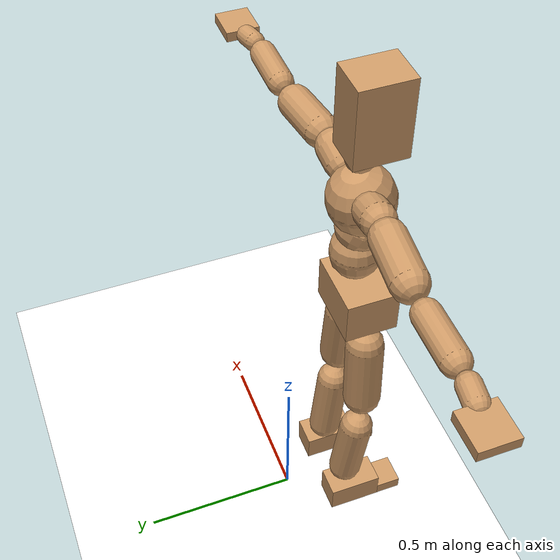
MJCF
<mujoco model="humanoid">
  <option integrator="implicitfast" />

  <visual>
    <global offwidth="1280" offheight="960" />
    <headlight active="1" ambient="0.34 0.34 0.34" diffuse="0.5 0.5 0.5" />
  </visual>

  <default>
    <joint damping="2" stiffness="2" armature="0.01" limited="true" solimplimit="0 .99 .01" />
    <geom condim="1" friction="0.7 0.005 0.0001" solimp=".99 .99 .003" solref="0.015 1" margin="0.001" rgba="0.8 0.6 .4 1" />
    <default class="smplcontact">
      <geom condim="3" friction="1. 0.005 0.0001" solref="0.015 1" solimp="0.98 0.98 0.001" priority="1" />
    </default>
    <default class="stiff_medium">
      <joint stiffness="10" />
    </default>
    <default class="stiff_medium_higher">
      <joint stiffness="50" />
    </default>
    <default class="stiff_high">
      <joint stiffness="100" />
    </default>
  </default>

  <asset>
    <texture type="skybox" builtin="gradient" rgb1="0.99 0.99 0.99" rgb2="0.608 0.828 0.892" width="100" />
    <texture builtin="flat" height="1278" mark="cross" markrgb="1 1 1" name="texgeom" random="0.01" rgb1="0.8 0.6 0.4" rgb2="0.8 0.6 0.4" type="cube" width="127" />
    <texture name="texplane" type="2d" builtin="checker" markrgb="1 1 1" rgb1="0.756 0.772 0.76" rgb2="0.6 0.6 0.6" width="100" height="100" />
    <material name="MatPlane" reflectance="0.5" texture="texplane" texrepeat="1 1" texuniform="true" />
    <material name="geom" texture="texgeom" texuniform="true" />
  </asset>

  <worldbody>
    <light name="tracking_light" pos="0 0 7" dir="0 0 -1" directional="true" cutoff="100" exponent="1" diffuse="1 1 1" specular="0.1 0.1 0.1" mode="trackcom" />
    <camera name="back" pos="0 3 2.4" xyaxes="-1 0 0 0 -1 2" mode="trackcom" />
    <camera name="side" pos="-3 0 2.4" xyaxes="0 -1 0 1 0 2" mode="trackcom" />
    <camera name="front_side" pos="-2.8 -2.8 0.8" xyaxes="0.5 -0.5 0 0.1 0.1 1" mode="trackcom" />
    <geom condim="3" name="floor" pos="0 0 0" rgba="1 1 1 1" size="100 100 .2" type="plane" material="MatPlane" />
    <body name="Pelvis" pos="-0.0018 -0.2233 0.9367" euler="90 0 0">
      <site name="Pelvis" size="0.01" />
      <freejoint name="Pelvis" />
      <geom type="box" pos="-0.0000 -0.0121 -0.0055" size="0.1069 0.0722 0.083" quat="1.0000 0.0000 0.0000 0.0000" density="3165.830099" name="Pelvis" />
      <body name="L_Hip" pos="0.0695 -0.0914 -0.0068">
        <joint name="L_Hip_x" type="hinge" pos="0 0 0" axis="1 0 0" stiffness="10.0" range="-160.0 22.92" class="stiff_medium" damping="14.999999999999998" armature="0.009999999999999998"/>
        <joint name="L_Hip_y" type="hinge" pos="0 0 0" axis="0 1 0" stiffness="10.0" range="-70.0 70.0" class="stiff_medium" damping="10.000000000000004" armature="0.010000000000000009"/>
        <joint name="L_Hip_z" type="hinge" pos="0 0 0" axis="0 0 1" stiffness="10.0" range="-28.65 90.0" class="stiff_medium" damping="10.0" armature="0.01"/>
        <geom type="capsule" density="2040.816327" fromto="0.0069 -0.075 -0.0009 0.0274 -0.3002 -0.0036" size="0.0615" name="L_Hip" />
        <body name="L_Knee" pos="0.0343 -0.3752 -0.0045">
          <joint name="L_Knee_x" type="hinge" pos="0 0 0" axis="1 0 0" range="-5.16 171.89" damping="8.0" armature="0.010000000000000002" stiffness="2.0"/>
          <joint name="L_Knee_y" type="hinge" pos="0 0 0" axis="0 1 0" range="-4.58 6.88" damping="8.0" armature="0.010000000000000002" stiffness="2.0"/>
          <joint name="L_Knee_z" type="hinge" pos="0 0 0" axis="0 0 1" range="-6.88 4.58" damping="8.0" armature="0.010000000000000002" stiffness="2.0"/>
          <geom type="capsule" density="1234.567901" fromto="-0.0027 -0.0796 -0.0087 -0.0109 -0.3184 -0.035" size="0.0541" name="L_Knee" />
          <body name="L_Ankle" pos="-0.0136 -0.398 -0.0437">
            <joint name="L_Ankle_x" type="hinge" pos="0 0 0" axis="1 0 0" range="-45.84 45.84" class="stiff_medium" damping="5.999999999999996" armature="0.009999999999999986" stiffness="10.0"/>
            <joint name="L_Ankle_y" type="hinge" pos="0 0 0" axis="0 1 0" range="-74.48 22.92" class="stiff_medium" damping="3.0" armature="0.01" stiffness="10.0"/>
            <joint name="L_Ankle_z" type="hinge" pos="0 0 0" axis="0 0 1" range="-4.58 4.58" class="stiff_medium" damping="5.999999999999995" armature="0.009999999999999983" stiffness="10.0"/>
            <geom type="box" pos="0.0233 -0.0239 0.0242" size="0.0483 0.0464 0.085" quat="1.0000 0.0000 0.0000 0.0000" density="449.071558" name="L_Ankle" class="smplcontact" />
            <body name="L_Toe" pos="0.0264 -0.0558 0.1193">
              <joint name="L_Toe_x" type="hinge" pos="0 0 0" axis="1 0 0" range="-91.67 22.92" armature="0.009999999999999466" damping="1.9999999999999465" stiffness="2.0"/>
              <joint name="L_Toe_y" type="hinge" pos="0 0 0" axis="0 1 0" range="-4.58 4.58" armature="0.01" damping="2.0" stiffness="2.0"/>
              <joint name="L_Toe_z" type="hinge" pos="0 0 0" axis="0 0 1" range="-4.58 4.58" armature="0.009999999999999527" damping="1.9999999999999527" stiffness="2.0"/>
              <geom type="box" pos="-0.003 0.0055 0.0248" size="0.0478 0.02 0.0496" quat="1.0000 0.0000 0.0000 0.0000" density="423.206892" name="L_Toe" class="smplcontact" />
            </body>
          </body>
        </body>
      </body>
      <body name="R_Hip" pos="-0.0677 -0.0905 -0.0043">
        <joint name="R_Hip_x" type="hinge" pos="0 0 0" axis="1 0 0" stiffness="10.0" range="-160.0 22.92" class="stiff_medium" damping="14.999999999999998" armature="0.009999999999999998"/>
        <joint name="R_Hip_y" type="hinge" pos="0 0 0" axis="0 1 0" stiffness="10.0" range="-70.0 70.0" class="stiff_medium" damping="10.000000000000004" armature="0.010000000000000009"/>
        <joint name="R_Hip_z" type="hinge" pos="0 0 0" axis="0 0 1" stiffness="10.0" range="-90.0 28.65" class="stiff_medium" damping="10.0" armature="0.01"/>
        <geom type="capsule" density="2040.816327" fromto="-0.0077 -0.0765 -0.0018 -0.0306 -0.3061 -0.0071" size="0.0606" name="R_Hip" />
        <body name="R_Knee" pos="-0.0383 -0.3826 -0.0089">
          <joint name="R_Knee_x" type="hinge" pos="0 0 0" axis="1 0 0" range="-5.16 171.89" damping="8.0" armature="0.010000000000000002" stiffness="2.0"/>
          <joint name="R_Knee_y" type="hinge" pos="0 0 0" axis="0 1 0" range="-6.88 4.58" damping="8.0" armature="0.010000000000000002" stiffness="2.0"/>
          <joint name="R_Knee_z" type="hinge" pos="0 0 0" axis="0 0 1" range="-4.58 6.88" damping="8.0" armature="0.010000000000000002" stiffness="2.0"/>
          <geom type="capsule" density="1234.567901" fromto="0.0032 -0.0797 -0.0085 0.0126 -0.3187 -0.0338" size="0.0541" name="R_Knee" />
          <body name="R_Ankle" pos="0.0158 -0.3984 -0.0423">
            <joint name="R_Ankle_x" type="hinge" pos="0 0 0" axis="1 0 0" range="-45.84 45.84" class="stiff_medium" damping="5.999999999999996" armature="0.009999999999999986" stiffness="10.0"/>
            <joint name="R_Ankle_y" type="hinge" pos="0 0 0" axis="0 1 0" range="-22.92 74.48" class="stiff_medium" damping="3.0" armature="0.01" stiffness="10.0"/>
            <joint name="R_Ankle_z" type="hinge" pos="0 0 0" axis="0 0 1" range="-4.58 4.58" class="stiff_medium" damping="5.999999999999995" armature="0.009999999999999983" stiffness="10.0"/>
            <geom type="box" pos="-0.0212 -0.0174 0.0256" size="0.0483 0.0478 0.0865" quat="1.0000 0.0000 0.0000 0.0000" density="434.700981" name="R_Ankle" class="smplcontact" />
            <body name="R_Toe" pos="-0.0254 -0.0481 0.1233">
              <joint name="R_Toe_x" type="hinge" pos="0 0 0" axis="1 0 0" range="-91.67 22.92" armature="0.009999999999999466" damping="1.9999999999999465" stiffness="2.0"/>
              <joint name="R_Toe_y" type="hinge" pos="0 0 0" axis="0 1 0" range="-4.58 4.58" armature="0.01" damping="2.0" stiffness="2.0"/>
              <joint name="R_Toe_z" type="hinge" pos="0 0 0" axis="0 0 1" range="-4.58 4.58" armature="0.009999999999999527" damping="1.9999999999999527" stiffness="2.0"/>
              <geom type="box" pos="0.0042 0.0045 0.0227" size="0.0479 0.0216 0.0493" quat="1.0000 0.0000 0.0000 0.0000" density="407.384095" name="R_Toe" class="smplcontact" />
            </body>
          </body>
        </body>
      </body>
      <body name="Torso" pos="-0.0025 0.109 -0.0267">
        <joint name="Torso_x" type="hinge" pos="0 0 0" axis="1 0 0" range="-25.78 57.3" class="stiff_medium" damping="16.257957907985634" armature="0.010999287462525029" stiffness="10.680336086956522"/>
        <joint name="Torso_y" type="hinge" pos="0 0 0" axis="0 1 0" range="-57.3 57.3" class="stiff_high" damping="20.75844929766266" armature="0.010038200240251807" stiffness="107.31834565217393"/>
        <joint name="Torso_z" type="hinge" pos="0 0 0" axis="0 0 1" range="-34.38 34.38" class="stiff_high" damping="21.253636288768384" armature="0.01067378030267965" stiffness="105.80062608695648"/>
        <geom type="capsule" density="2040.816327" fromto="0.0025 0.0608 0.0005 0.003 0.0743 0.0006" size="0.0769" name="Torso" />
        <body name="Spine" pos="0.0055 0.1352 0.0011">
          <joint name="Spine_x" type="hinge" pos="0 0 0" axis="1 0 0" stiffness="10.820656304347827" range="-25.78 57.3" class="stiff_medium" damping="16.640961684204633" armature="0.01137419633076733"/>
          <joint name="Spine_y" type="hinge" pos="0 0 0" axis="0 1 0" stiffness="10.801027826086958" range="-57.3 57.3" class="stiff_high" damping="8.330007194026571" armature="0.010037965392305077"/>
          <joint name="Spine_z" type="hinge" pos="0 0 0" axis="0 0 1" stiffness="21.55153869565218" range="-34.38 34.38" class="stiff_high" damping="12.852201297894249" armature="0.010644965523384465"/>
          <geom type="capsule" density="2040.816327" fromto="0.0007 0.0238 0.0114 0.0008 0.0291 0.014" size="0.0755" name="Spine" />
          <body name="Chest" pos="0.0015 0.0529 0.0254">
            <joint name="Chest_x" type="hinge" pos="0 0 0" axis="1 0 0" stiffness="11.04593152173913" range="-25.78 57.3" class="stiff_medium" damping="16.951254146194145" armature="0.011561623051019081"/>
            <joint name="Chest_y" type="hinge" pos="0 0 0" axis="0 1 0" stiffness="10.635561111111112" range="-57.3 57.3" class="stiff_high" damping="8.264623854352546" armature="0.010034732585502562"/>
            <joint name="Chest_z" type="hinge" pos="0 0 0" axis="0 0 1" stiffness="21.967638695652173" range="-34.38 34.38" class="stiff_high" damping="12.944881751223788" armature="0.010594496009103256"/>
            <geom type="capsule" density="2040.816327" fromto="-0.0009 0.0682 -0.0173 -0.001 0.0833 -0.0212" size="0.1002" name="Chest" />
            <body name="Neck" pos="-0.0028 0.2139 -0.0429">
              <joint name="Neck_x" type="hinge" pos="0 0 0" axis="1 0 0" range="-28.65 57.3" class="stiff_medium_higher" damping="12.51131283634167" armature="0.012774521028593862" stiffness="61.26763913043478"/>
              <joint name="Neck_y" type="hinge" pos="0 0 0" axis="0 1 0" range="-40.11 40.11" class="stiff_medium_higher" damping="12.88442116560833" armature="0.01351565325558498" stiffness="61.41334999999999"/>
              <joint name="Neck_z" type="hinge" pos="0 0 0" axis="0 0 1" range="-40.11 40.11" class="stiff_medium_higher" damping="12.55539122755616" armature="0.01276824699939483" stiffness="61.730419565217396"/>
              <geom type="capsule" density="1000" fromto="0.001 0.013 0.0103 0.0041 0.052 0.0411" size="0.0436" name="Neck" />
              <body name="Head" pos="0.0052 0.065 0.0513">
                <joint name="Head_x" type="hinge" pos="0 0 0" axis="1 0 0" range="-28.65 57.3" class="stiff_medium_higher" damping="2.5699456092975947" armature="0.01329114622901767" stiffness="62.11485"/>
                <joint name="Head_y" type="hinge" pos="0 0 0" axis="0 1 0" range="-40.11 40.11" class="stiff_medium_higher" damping="2.6626350323293875" armature="0.014267170643146762" stiffness="62.11485"/>
                <joint name="Head_z" type="hinge" pos="0 0 0" axis="0 0 1" range="-40.11 40.11" class="stiff_medium_higher" damping="2.565269144389534" armature="0.013242819114827236" stiffness="62.11485"/>
                <geom type="box" pos="-0.0042 0.0876 -0.0116" size="0.065145 0.124055 0.0817" quat="1.0000 0.0000 0.0000 0.0000" density="1018.069894" name="Head" />
                <geom type="capsule" name="nose" size="0.0215 0.01075" pos="0 0.07 0.05" quat="1 0 0 0" mass="0" contype="0" conaffinity="0" />
              </body>
            </body>
            <body name="L_Thorax" pos="0.0788 0.1217 -0.0341">
              <joint name="L_Thorax_x" type="hinge" pos="0 0 0" axis="1 0 0" range="-10.89 4.58" class="stiff_medium_higher" damping="20.000000000000043" armature="0.010000000000000045" stiffness="50.0"/>
              <joint name="L_Thorax_y" type="hinge" pos="0 0 0" axis="0 1 0" range="-28.65 17.19" class="stiff_medium_higher" damping="20.0" armature="0.01" stiffness="50.0"/>
              <joint name="L_Thorax_z" type="hinge" pos="0 0 0" axis="0 0 1" range="-31.51 40.11" class="stiff_medium_higher" damping="19.999999999999996" armature="0.009999999999999997" stiffness="50.0"/>
              <geom type="capsule" density="1000" fromto="0.0182 0.0061 -0.0018 0.0728 0.0244 -0.0071" size="0.0521" name="L_Thorax" />
              <body name="L_Shoulder" pos="0.091 0.0305 -0.0089">
                <joint name="L_Shoulder_x" type="hinge" pos="0 0 0" axis="1 0 0" range="-97.4 97.4" class="stiff_medium" damping="6.000000000000109" armature="0.010000000000000365" stiffness="10.0"/>
                <joint name="L_Shoulder_y" type="hinge" pos="0 0 0" axis="0 1 0" range="-108.86 80.21" class="stiff_medium" damping="6.0" armature="0.01" stiffness="10.0"/>
                <joint name="L_Shoulder_z" type="hinge" pos="0 0 0" axis="0 0 1" range="-97.4 85.94" class="stiff_medium" damping="6.000000000000002" armature="0.010000000000000005" stiffness="10.0"/>
                <geom type="capsule" density="1000" fromto="0.0519 -0.0026 -0.0055 0.2077 -0.0102 -0.022" size="0.0517" name="L_Shoulder" />
                <body name="L_Elbow" pos="0.2596 -0.0128 -0.0275">
                  <joint name="L_Elbow_x" type="hinge" pos="0 0 0" axis="1 0 0" range="-17.19 4.58" damping="5.000000000000027" armature="0.01000000000000011" stiffness="2.0"/>
                  <joint name="L_Elbow_y" type="hinge" pos="0 0 0" axis="0 1 0" range="-180.0 17.19" damping="5.000000000000005" armature="0.010000000000000023" stiffness="2.0"/>
                  <joint name="L_Elbow_z" type="hinge" pos="0 0 0" axis="0 0 1" range="-100.84 4.58" damping="5.000000000000002" armature="0.010000000000000009" stiffness="2.0"/>
                  <geom type="capsule" density="1000" fromto="0.0498 0.0018 -0.0002 0.1994 0.0072 -0.0009" size="0.0405" name="L_Elbow" />
                  <body name="L_Wrist" pos="0.2492 0.009 -0.0012">
                    <joint name="L_Wrist_x" type="hinge" pos="0 0 0" axis="1 0 0" range="-180.0 22.92" armature="0.00999999999999949" damping="1.999999999999949" stiffness="2.0"/>
                    <joint name="L_Wrist_y" type="hinge" pos="0 0 0" axis="0 1 0" range="-17.19 17.19" armature="0.009999999999999993" damping="1.9999999999999991" stiffness="2.0"/>
                    <joint name="L_Wrist_z" type="hinge" pos="0 0 0" axis="0 0 1" range="-22.92 22.92" armature="0.009999999999999898" damping="1.9999999999999898" stiffness="2.0"/>
                    <geom type="capsule" density="1000" fromto="0.0168 -0.0016 -0.003 0.0672 -0.0065 -0.012" size="0.0318" name="L_Wrist" class="smplcontact" />
                    <body name="L_Hand" pos="0.084 -0.0082 -0.0149">
                      <joint name="L_Hand_x" type="hinge" pos="0 0 0" axis="1 0 0" range="-17.19 17.19" armature="0.009999999999999728" damping="1.9999999999999727" stiffness="2.0"/>
                      <joint name="L_Hand_y" type="hinge" pos="0 0 0" axis="0 1 0" range="-51.57 51.57" armature="0.010000000000000436" damping="2.0000000000000435" stiffness="2.0"/>
                      <joint name="L_Hand_z" type="hinge" pos="0 0 0" axis="0 0 1" range="-91.67 91.67" armature="0.010000000000000267" damping="2.0000000000000266" stiffness="2.0"/>
                      <geom type="box" pos="0.0493 0.001 -0.0058" size="0.0585 0.0158 0.0538" quat="1.0000 0.0000 0.0000 0.0000" density="400.552564" name="L_Hand" class="smplcontact" />
                    </body>
                  </body>
                </body>
              </body>
            </body>
            <body name="R_Thorax" pos="-0.0818 0.1188 -0.0386">
              <joint name="R_Thorax_x" type="hinge" pos="0 0 0" axis="1 0 0" range="-10.89 4.58" class="stiff_medium_higher" damping="20.000000000000043" armature="0.010000000000000045" stiffness="50.0"/>
              <joint name="R_Thorax_y" type="hinge" pos="0 0 0" axis="0 1 0" range="-17.19 28.65" class="stiff_medium_higher" damping="20.0" armature="0.01" stiffness="50.0"/>
              <joint name="R_Thorax_z" type="hinge" pos="0 0 0" axis="0 0 1" range="-40.11 31.51" class="stiff_medium_higher" damping="19.999999999999996" armature="0.009999999999999997" stiffness="50.0"/>
              <geom type="capsule" density="1000" fromto="-0.0192 0.0065 -0.0018 -0.0768 0.026 -0.0073" size="0.0511" name="R_Thorax" />
              <body name="R_Shoulder" pos="-0.096 0.0326 -0.0091">
                <joint name="R_Shoulder_x" type="hinge" pos="0 0 0" axis="1 0 0" range="-97.4 97.4" class="stiff_medium" damping="6.000000000000109" armature="0.010000000000000365" stiffness="10.0"/>
                <joint name="R_Shoulder_y" type="hinge" pos="0 0 0" axis="0 1 0" range="-80.21 108.86" class="stiff_medium" damping="6.0" armature="0.01" stiffness="10.0"/>
                <joint name="R_Shoulder_z" type="hinge" pos="0 0 0" axis="0 0 1" range="-85.94 97.4" class="stiff_medium" damping="6.000000000000002" armature="0.010000000000000005" stiffness="10.0"/>
                <geom type="capsule" density="1000" fromto="-0.0507 -0.0027 -0.0043 -0.203 -0.0107 -0.0171" size="0.0531" name="R_Shoulder" />
                <body name="R_Elbow" pos="-0.2537 -0.0133 -0.0214">
                  <joint name="R_Elbow_x" type="hinge" pos="0 0 0" axis="1 0 0" range="-17.19 4.58" damping="5.000000000000027" armature="0.01000000000000011" stiffness="2.0"/>
                  <joint name="R_Elbow_y" type="hinge" pos="0 0 0" axis="0 1 0" range="-17.19 180.0" damping="5.000000000000005" armature="0.010000000000000023" stiffness="2.0"/>
                  <joint name="R_Elbow_z" type="hinge" pos="0 0 0" axis="0 0 1" range="-4.58 100.84" damping="5.000000000000002" armature="0.010000000000000009" stiffness="2.0"/>
                  <geom type="capsule" density="1000" fromto="-0.0511 0.0016 -0.0011 -0.2042 0.0062 -0.0044" size="0.0408" name="R_Elbow" />
                  <body name="R_Wrist" pos="-0.2553 0.0078 -0.0056">
                    <joint name="R_Wrist_x" type="hinge" pos="0 0 0" axis="1 0 0" range="-180.0 22.92" armature="0.00999999999999949" damping="1.999999999999949" stiffness="2.0"/>
                    <joint name="R_Wrist_y" type="hinge" pos="0 0 0" axis="0 1 0" range="-17.19 17.19" armature="0.009999999999999993" damping="1.9999999999999991" stiffness="2.0"/>
                    <joint name="R_Wrist_z" type="hinge" pos="0 0 0" axis="0 0 1" range="-22.92 22.92" armature="0.009999999999999898" damping="1.9999999999999898" stiffness="2.0"/>
                    <geom type="capsule" density="1000" fromto="-0.0169 -0.0012 -0.0021 -0.0677 -0.0049 -0.0083" size="0.0326" name="R_Wrist" class="smplcontact" />
                    <body name="R_Hand" pos="-0.0846 -0.0061 -0.0103">
                      <joint name="R_Hand_x" type="hinge" pos="0 0 0" axis="1 0 0" range="-17.19 17.19" armature="0.009999999999999728" damping="1.9999999999999727" stiffness="2.0"/>
                      <joint name="R_Hand_y" type="hinge" pos="0 0 0" axis="0 1 0" range="-51.57 51.57" armature="0.010000000000000436" damping="2.0000000000000435" stiffness="2.0"/>
                      <joint name="R_Hand_z" type="hinge" pos="0 0 0" axis="0 0 1" range="-91.67 91.67" armature="0.010000000000000267" damping="2.0000000000000266" stiffness="2.0"/>
                      <geom type="box" pos="-0.0462 -0.0009 -0.0079" size="0.0569 0.0164 0.0546" quat="1.0000 0.0000 0.0000 0.0000" density="403.679611" name="R_Hand" class="smplcontact" />
                    </body>
                  </body>
                </body>
              </body>
            </body>
          </body>
        </body>
      </body>
    </body>
  </worldbody>
  <actuator>
    <general name="L_Hip_x" joint="L_Hip_x" biastype="affine" gainprm="287.33006409732246" biasprm="-215.3247604770444 -180.0 -1.9999999999999998" ctrllimited="true" ctrlrange="-1 1" forcerange="-360.0 360.0" />
    <general name="L_Hip_y" joint="L_Hip_y" biastype="affine" gainprm="219.9114857512855" biasprm="0.0 -180.0 -2.000000000000001" ctrllimited="true" ctrlrange="-1 1" forcerange="-360.0 360.0" />
    <general name="L_Hip_z" joint="L_Hip_z" biastype="affine" gainprm="186.3749841742145" biasprm="96.3683546488669 -180.0 -2.0" ctrllimited="true" ctrlrange="-1 1" forcerange="-360.0 360.0" />
    <general name="L_Knee_x" joint="L_Knee_x" biastype="affine" gainprm="278.10948965903646" biasprm="261.8988715665131 -180.0 -2.0" ctrllimited="true" ctrlrange="-1 1" forcerange="-360.0 360.0" />
    <general name="L_Knee_y" joint="L_Knee_y" biastype="affine" gainprm="18.001325905069514" biasprm="3.612831551628262 -180.0 -2.0" ctrllimited="true" ctrlrange="-1 1" forcerange="-360.0 360.0" />
    <general name="L_Knee_z" joint="L_Knee_z" biastype="affine" gainprm="18.001325905069514" biasprm="-3.612831551628262 -180.0 -2.0" ctrllimited="true" ctrlrange="-1 1" forcerange="-360.0 360.0" />
    <general name="L_Ankle_x" joint="L_Ankle_x" biastype="affine" gainprm="72.00530362027807" biasprm="0.0 -90.0 -1.9999999999999984" ctrllimited="true" ctrlrange="-1 1" forcerange="-180.0 180.0" />
    <general name="L_Ankle_y" joint="L_Ankle_y" biastype="affine" gainprm="76.49778111491148" biasprm="-40.49512930477244 -90.0 -2.0" ctrllimited="true" ctrlrange="-1 1" forcerange="-180.0 180.0" />
    <general name="L_Ankle_z" joint="L_Ankle_z" biastype="affine" gainprm="7.1942471767206255" biasprm="0.0 -90.0 -1.9999999999999982" ctrllimited="true" ctrlrange="-1 1" forcerange="-180.0 180.0" />
    <general name="L_Toe_x" joint="L_Toe_x" biastype="affine" gainprm="71.99902043497087" biasprm="-43.19689898685965 -72.0 -0.7999999999999786" ctrllimited="true" ctrlrange="-1 1" forcerange="-144.0 144.0" />
    <general name="L_Toe_y" joint="L_Toe_y" biastype="affine" gainprm="5.755397741376501" biasprm="0.0 -72.0 -0.8" ctrllimited="true" ctrlrange="-1 1" forcerange="-144.0 144.0" />
    <general name="L_Toe_z" joint="L_Toe_z" biastype="affine" gainprm="5.755397741376501" biasprm="0.0 -72.0 -0.7999999999999812" ctrllimited="true" ctrlrange="-1 1" forcerange="-144.0 144.0" />
    <general name="R_Hip_x" joint="R_Hip_x" biastype="affine" gainprm="287.33006409732246" biasprm="-215.3247604770444 -180.0 -1.9999999999999998" ctrllimited="true" ctrlrange="-1 1" forcerange="-360.0 360.0" />
    <general name="R_Hip_y" joint="R_Hip_y" biastype="affine" gainprm="219.9114857512855" biasprm="0.0 -180.0 -2.000000000000001" ctrllimited="true" ctrlrange="-1 1" forcerange="-360.0 360.0" />
    <general name="R_Hip_z" joint="R_Hip_z" biastype="affine" gainprm="186.3749841742145" biasprm="-96.3683546488669 -180.0 -2.0" ctrllimited="true" ctrlrange="-1 1" forcerange="-360.0 360.0" />
    <general name="R_Knee_x" joint="R_Knee_x" biastype="affine" gainprm="278.10948965903646" biasprm="261.8988715665131 -180.0 -2.0" ctrllimited="true" ctrlrange="-1 1" forcerange="-360.0 360.0" />
    <general name="R_Knee_y" joint="R_Knee_y" biastype="affine" gainprm="18.001325905069514" biasprm="-3.612831551628262 -180.0 -2.0" ctrllimited="true" ctrlrange="-1 1" forcerange="-360.0 360.0" />
    <general name="R_Knee_z" joint="R_Knee_z" biastype="affine" gainprm="18.001325905069514" biasprm="3.612831551628262 -180.0 -2.0" ctrllimited="true" ctrlrange="-1 1" forcerange="-360.0 360.0" />
    <general name="R_Ankle_x" joint="R_Ankle_x" biastype="affine" gainprm="72.00530362027807" biasprm="0.0 -90.0 -1.9999999999999984" ctrllimited="true" ctrlrange="-1 1" forcerange="-180.0 180.0" />
    <general name="R_Ankle_y" joint="R_Ankle_y" biastype="affine" gainprm="76.49778111491148" biasprm="40.49512930477244 -90.0 -2.0" ctrllimited="true" ctrlrange="-1 1" forcerange="-180.0 180.0" />
    <general name="R_Ankle_z" joint="R_Ankle_z" biastype="affine" gainprm="7.1942471767206255" biasprm="0.0 -90.0 -1.9999999999999982" ctrllimited="true" ctrlrange="-1 1" forcerange="-180.0 180.0" />
    <general name="R_Toe_x" joint="R_Toe_x" biastype="affine" gainprm="71.99902043497087" biasprm="-43.19689898685965 -72.0 -0.7999999999999786" ctrllimited="true" ctrlrange="-1 1" forcerange="-144.0 144.0" />
    <general name="R_Toe_y" joint="R_Toe_y" biastype="affine" gainprm="5.755397741376501" biasprm="0.0 -72.0 -0.8" ctrllimited="true" ctrlrange="-1 1" forcerange="-144.0 144.0" />
    <general name="R_Toe_z" joint="R_Toe_z" biastype="affine" gainprm="5.755397741376501" biasprm="0.0 -72.0 -0.7999999999999812" ctrllimited="true" ctrlrange="-1 1" forcerange="-144.0 144.0" />
    <general name="Torso_x" joint="Torso_x" biastype="affine" gainprm="185.84035256595038" biasprm="70.50659500335526 -256.32806608695654 -4.335455442129502" ctrllimited="true" ctrlrange="-1 1" forcerange="-384.49209913043484 384.49209913043484" />
    <general name="Torso_y" joint="Torso_y" biastype="affine" gainprm="257.5830020903577" biasprm="0.0 -257.5640295652174 -4.1516898595325324" ctrllimited="true" ctrlrange="-1 1" forcerange="-386.34604434782614 386.34604434782614" />
    <general name="Torso_z" joint="Torso_z" biastype="affine" gainprm="152.36412409213628" biasprm="0.0 -253.92150260869556 -4.2507272577536765" ctrllimited="true" ctrlrange="-1 1" forcerange="-380.8822539130433 380.8822539130433" />
    <general name="Spine_x" joint="Spine_x" biastype="affine" gainprm="188.28195725514902" biasprm="71.43292359993134 -259.6957513043478 -4.437589782454569" ctrllimited="true" ctrlrange="-1 1" forcerange="-389.54362695652173 389.54362695652173" />
    <general name="Spine_y" joint="Spine_y" biastype="affine" gainprm="259.2437626761544" biasprm="0.0 -259.224667826087 -4.1650035970132855" ctrllimited="true" ctrlrange="-1 1" forcerange="-388.83700173913047 388.83700173913047" />
    <general name="Spine_z" joint="Spine_z" biastype="affine" gainprm="155.18250872646067" biasprm="0.0 -258.61846434782615 -4.284067099298083" ctrllimited="true" ctrlrange="-1 1" forcerange="-387.9276965217392 387.9276965217392" />
    <general name="Chest_x" joint="Chest_x" biastype="affine" gainprm="192.2017988672027" biasprm="72.92008546333929 -265.1023565217391 -4.520334438985105" ctrllimited="true" ctrlrange="-1 1" forcerange="-397.6535347826087 397.6535347826087" />
    <general name="Chest_y" joint="Chest_y" biastype="affine" gainprm="255.2722689925258" biasprm="0.0 -255.25346666666667 -4.132311927176273" ctrllimited="true" ctrlrange="-1 1" forcerange="-382.8802 382.8802" />
    <general name="Chest_z" joint="Chest_z" biastype="affine" gainprm="158.1786494101004" biasprm="0.0 -263.6116643478261 -4.314960583741263" ctrllimited="true" ctrlrange="-1 1" forcerange="-395.4174965217391 395.4174965217391" />
    <general name="Neck_x" joint="Neck_x" biastype="affine" gainprm="33.08696218263439" biasprm="11.028987394211462 -44.11270017391304 -1.0009050269073336" ctrllimited="true" ctrlrange="-1 1" forcerange="-88.22540034782608 88.22540034782608" />
    <general name="Neck_y" joint="Neck_y" biastype="affine" gainprm="30.95460839161882" biasprm="0.0 -44.21761199999999 -1.0307536932486665" ctrllimited="true" ctrlrange="-1 1" forcerange="-88.43522399999998 88.43522399999998" />
    <general name="Neck_z" joint="Neck_z" biastype="affine" gainprm="31.114423223804422" biasprm="0.0 -44.44590208695653 -1.004431298204493" ctrllimited="true" ctrlrange="-1 1" forcerange="-88.89180417391306 88.89180417391306" />
    <general name="Head_x" joint="Head_x" biastype="affine" gainprm="22.362993167890142" biasprm="7.45433105596338 -29.815128 -1.027978243719038" ctrllimited="true" ctrlrange="-1 1" forcerange="-59.630256 59.630256" />
    <general name="Head_y" joint="Head_y" biastype="affine" gainprm="20.872126956697464" biasprm="0.0 -29.815128 -1.065054012931755" ctrllimited="true" ctrlrange="-1 1" forcerange="-59.630256 59.630256" />
    <general name="Head_z" joint="Head_z" biastype="affine" gainprm="20.872126956697464" biasprm="0.0 -29.815128 -1.0261076577558137" ctrllimited="true" ctrlrange="-1 1" forcerange="-59.630256 59.630256" />
    <general name="L_Thorax_x" joint="L_Thorax_x" biastype="affine" gainprm="16.200146117011364" biasprm="-6.6078165480505335 -120.0 -1.6000000000000036" ctrllimited="true" ctrlrange="-1 1" forcerange="-240.0 240.0" />
    <general name="L_Thorax_y" joint="L_Thorax_y" biastype="affine" gainprm="48.00353574685204" biasprm="-12.00088393671301 -120.0 -1.6" ctrllimited="true" ctrlrange="-1 1" forcerange="-240.0 240.0" />
    <general name="L_Thorax_z" joint="L_Thorax_z" biastype="affine" gainprm="75.00028861670033" biasprm="9.00589894029074 -120.0 -1.5999999999999996" ctrllimited="true" ctrlrange="-1 1" forcerange="-240.0 240.0" />
    <general name="L_Shoulder_x" joint="L_Shoulder_x" biastype="affine" gainprm="81.5976331892389" biasprm="0.0 -48.0 -1.6000000000000292" ctrllimited="true" ctrlrange="-1 1" forcerange="-96.0 96.0" />
    <general name="L_Shoulder_y" joint="L_Shoulder_y" biastype="affine" gainprm="79.19745640189629" biasprm="-12.00088393671301 -48.0 -1.6" ctrllimited="true" ctrlrange="-1 1" forcerange="-96.0 96.0" />
    <general name="L_Shoulder_z" joint="L_Shoulder_z" biastype="affine" gainprm="76.79727961455369" biasprm="-4.800353574685214 -48.0 -1.6000000000000005" ctrllimited="true" ctrlrange="-1 1" forcerange="-96.0 96.0" />
    <general name="L_Elbow_x" joint="L_Elbow_x" biastype="affine" gainprm="13.67849441372996" biasprm="-7.923096672353461 -72.0 -0.8000000000000043" ctrllimited="true" ctrlrange="-1 1" forcerange="-144.0 144.0" />
    <general name="L_Elbow_y" joint="L_Elbow_y" biastype="affine" gainprm="123.89813107227425" biasprm="-102.29653998619085 -72.0 -0.8000000000000009" ctrllimited="true" ctrlrange="-1 1" forcerange="-144.0 144.0" />
    <general name="L_Elbow_z" joint="L_Elbow_z" biastype="affine" gainprm="66.23733950828719" biasprm="-60.4819417669107 -72.0 -0.8000000000000004" ctrllimited="true" ctrlrange="-1 1" forcerange="-144.0 144.0" />
    <general name="L_Wrist_x" joint="L_Wrist_x" biastype="affine" gainprm="21.24973270888136" biasprm="-16.449379134196157 -12.0 -0.7999999999999796" ctrllimited="true" ctrlrange="-1 1" forcerange="-24.0 24.0" />
    <general name="L_Wrist_y" joint="L_Wrist_y" biastype="affine" gainprm="3.6002651810139037" biasprm="0.0 -12.0 -0.7999999999999997" ctrllimited="true" ctrlrange="-1 1" forcerange="-24.0 24.0" />
    <general name="L_Wrist_z" joint="L_Wrist_z" biastype="affine" gainprm="4.800353574685205" biasprm="0.0 -12.0 -0.7999999999999959" ctrllimited="true" ctrlrange="-1 1" forcerange="-24.0 24.0" />
    <general name="L_Hand_x" joint="L_Hand_x" biastype="affine" gainprm="3.6002651810139037" biasprm="0.0 -12.0 -0.7999999999999892" ctrllimited="true" ctrlrange="-1 1" forcerange="-24.0 24.0" />
    <general name="L_Hand_y" joint="L_Hand_y" biastype="affine" gainprm="10.800795543041708" biasprm="0.0 -12.0 -0.8000000000000175" ctrllimited="true" ctrlrange="-1 1" forcerange="-24.0 24.0" />
    <general name="L_Hand_z" joint="L_Hand_z" biastype="affine" gainprm="19.199319903638422" biasprm="0.0 -12.0 -0.8000000000000107" ctrllimited="true" ctrlrange="-1 1" forcerange="-24.0 24.0" />
    <general name="R_Thorax_x" joint="R_Thorax_x" biastype="affine" gainprm="16.200146117011364" biasprm="-6.6078165480505335 -120.0 -1.6000000000000036" ctrllimited="true" ctrlrange="-1 1" forcerange="-240.0 240.0" />
    <general name="R_Thorax_y" joint="R_Thorax_y" biastype="affine" gainprm="48.00353574685204" biasprm="12.000883936713002 -120.0 -1.6" ctrllimited="true" ctrlrange="-1 1" forcerange="-240.0 240.0" />
    <general name="R_Thorax_z" joint="R_Thorax_z" biastype="affine" gainprm="75.00028861670033" biasprm="-9.00589894029074 -120.0 -1.5999999999999996" ctrllimited="true" ctrlrange="-1 1" forcerange="-240.0 240.0" />
    <general name="R_Shoulder_x" joint="R_Shoulder_x" biastype="affine" gainprm="81.5976331892389" biasprm="0.0 -48.0 -1.6000000000000292" ctrllimited="true" ctrlrange="-1 1" forcerange="-96.0 96.0" />
    <general name="R_Shoulder_y" joint="R_Shoulder_y" biastype="affine" gainprm="79.19745640189629" biasprm="12.00088393671301 -48.0 -1.6" ctrllimited="true" ctrlrange="-1 1" forcerange="-96.0 96.0" />
    <general name="R_Shoulder_z" joint="R_Shoulder_z" biastype="affine" gainprm="76.79727961455369" biasprm="4.800353574685204 -48.0 -1.6000000000000005" ctrllimited="true" ctrlrange="-1 1" forcerange="-96.0 96.0" />
    <general name="R_Elbow_x" joint="R_Elbow_x" biastype="affine" gainprm="13.67849441372996" biasprm="-7.923096672353461 -72.0 -0.8000000000000043" ctrllimited="true" ctrlrange="-1 1" forcerange="-144.0 144.0" />
    <general name="R_Elbow_y" joint="R_Elbow_y" biastype="affine" gainprm="123.89813107227425" biasprm="102.29653998619085 -72.0 -0.8000000000000009" ctrllimited="true" ctrlrange="-1 1" forcerange="-144.0 144.0" />
    <general name="R_Elbow_z" joint="R_Elbow_z" biastype="affine" gainprm="66.23733950828719" biasprm="60.481941766910694 -72.0 -0.8000000000000004" ctrllimited="true" ctrlrange="-1 1" forcerange="-144.0 144.0" />
    <general name="R_Wrist_x" joint="R_Wrist_x" biastype="affine" gainprm="21.24973270888136" biasprm="-16.449379134196157 -12.0 -0.7999999999999796" ctrllimited="true" ctrlrange="-1 1" forcerange="-24.0 24.0" />
    <general name="R_Wrist_y" joint="R_Wrist_y" biastype="affine" gainprm="3.6002651810139037" biasprm="0.0 -12.0 -0.7999999999999997" ctrllimited="true" ctrlrange="-1 1" forcerange="-24.0 24.0" />
    <general name="R_Wrist_z" joint="R_Wrist_z" biastype="affine" gainprm="4.800353574685205" biasprm="0.0 -12.0 -0.7999999999999959" ctrllimited="true" ctrlrange="-1 1" forcerange="-24.0 24.0" />
    <general name="R_Hand_x" joint="R_Hand_x" biastype="affine" gainprm="3.6002651810139037" biasprm="0.0 -12.0 -0.7999999999999892" ctrllimited="true" ctrlrange="-1 1" forcerange="-24.0 24.0" />
    <general name="R_Hand_y" joint="R_Hand_y" biastype="affine" gainprm="10.800795543041708" biasprm="0.0 -12.0 -0.8000000000000175" ctrllimited="true" ctrlrange="-1 1" forcerange="-24.0 24.0" />
    <general name="R_Hand_z" joint="R_Hand_z" biastype="affine" gainprm="19.199319903638422" biasprm="0.0 -12.0 -0.8000000000000107" ctrllimited="true" ctrlrange="-1 1" forcerange="-24.0 24.0" />
  </actuator>
  <contact>
    <exclude body1="Torso" body2="Chest" />
    <exclude body1="Head" body2="Chest" />
    <exclude body1="R_Knee" body2="R_Toe" />
    <exclude body1="R_Knee" body2="L_Ankle" />
    <exclude body1="R_Knee" body2="L_Toe" />
    <exclude body1="L_Knee" body2="L_Toe" />
    <exclude body1="L_Knee" body2="R_Ankle" />
    <exclude body1="L_Knee" body2="R_Toe" />
    <exclude body1="L_Shoulder" body2="Chest" />
    <exclude body1="R_Shoulder" body2="Chest" />
  </contact>
  <sensor>
    <framelinvel name="sensor_Pelvis_framelinvel" objtype="xbody" objname="Pelvis" />
    <framelinvel name="sensor_L_Hip_framelinvel" objtype="xbody" objname="L_Hip" />
    <framelinvel name="sensor_L_Knee_framelinvel" objtype="xbody" objname="L_Knee" />
    <framelinvel name="sensor_L_Ankle_framelinvel" objtype="xbody" objname="L_Ankle" />
    <framelinvel name="sensor_L_Toe_framelinvel" objtype="xbody" objname="L_Toe" />
    <framelinvel name="sensor_R_Hip_framelinvel" objtype="xbody" objname="R_Hip" />
    <framelinvel name="sensor_R_Knee_framelinvel" objtype="xbody" objname="R_Knee" />
    <framelinvel name="sensor_R_Ankle_framelinvel" objtype="xbody" objname="R_Ankle" />
    <framelinvel name="sensor_R_Toe_framelinvel" objtype="xbody" objname="R_Toe" />
    <framelinvel name="sensor_Torso_framelinvel" objtype="xbody" objname="Torso" />
    <framelinvel name="sensor_Spine_framelinvel" objtype="xbody" objname="Spine" />
    <framelinvel name="sensor_Chest_framelinvel" objtype="xbody" objname="Chest" />
    <framelinvel name="sensor_Neck_framelinvel" objtype="xbody" objname="Neck" />
    <framelinvel name="sensor_Head_framelinvel" objtype="xbody" objname="Head" />
    <framelinvel name="sensor_L_Thorax_framelinvel" objtype="xbody" objname="L_Thorax" />
    <framelinvel name="sensor_L_Shoulder_framelinvel" objtype="xbody" objname="L_Shoulder" />
    <framelinvel name="sensor_L_Elbow_framelinvel" objtype="xbody" objname="L_Elbow" />
    <framelinvel name="sensor_L_Wrist_framelinvel" objtype="xbody" objname="L_Wrist" />
    <framelinvel name="sensor_L_Hand_framelinvel" objtype="xbody" objname="L_Hand" />
    <framelinvel name="sensor_R_Thorax_framelinvel" objtype="xbody" objname="R_Thorax" />
    <framelinvel name="sensor_R_Shoulder_framelinvel" objtype="xbody" objname="R_Shoulder" />
    <framelinvel name="sensor_R_Elbow_framelinvel" objtype="xbody" objname="R_Elbow" />
    <framelinvel name="sensor_R_Wrist_framelinvel" objtype="xbody" objname="R_Wrist" />
    <framelinvel name="sensor_R_Hand_framelinvel" objtype="xbody" objname="R_Hand" />
    <frameangvel name="sensor_Pelvis_frameangvel" objtype="xbody" objname="Pelvis" />
    <frameangvel name="sensor_L_Hip_frameangvel" objtype="xbody" objname="L_Hip" />
    <frameangvel name="sensor_L_Knee_frameangvel" objtype="xbody" objname="L_Knee" />
    <frameangvel name="sensor_L_Ankle_frameangvel" objtype="xbody" objname="L_Ankle" />
    <frameangvel name="sensor_L_Toe_frameangvel" objtype="xbody" objname="L_Toe" />
    <frameangvel name="sensor_R_Hip_frameangvel" objtype="xbody" objname="R_Hip" />
    <frameangvel name="sensor_R_Knee_frameangvel" objtype="xbody" objname="R_Knee" />
    <frameangvel name="sensor_R_Ankle_frameangvel" objtype="xbody" objname="R_Ankle" />
    <frameangvel name="sensor_R_Toe_frameangvel" objtype="xbody" objname="R_Toe" />
    <frameangvel name="sensor_Torso_frameangvel" objtype="xbody" objname="Torso" />
    <frameangvel name="sensor_Spine_frameangvel" objtype="xbody" objname="Spine" />
    <frameangvel name="sensor_Chest_frameangvel" objtype="xbody" objname="Chest" />
    <frameangvel name="sensor_Neck_frameangvel" objtype="xbody" objname="Neck" />
    <frameangvel name="sensor_Head_frameangvel" objtype="xbody" objname="Head" />
    <frameangvel name="sensor_L_Thorax_frameangvel" objtype="xbody" objname="L_Thorax" />
    <frameangvel name="sensor_L_Shoulder_frameangvel" objtype="xbody" objname="L_Shoulder" />
    <frameangvel name="sensor_L_Elbow_frameangvel" objtype="xbody" objname="L_Elbow" />
    <frameangvel name="sensor_L_Wrist_frameangvel" objtype="xbody" objname="L_Wrist" />
    <frameangvel name="sensor_L_Hand_frameangvel" objtype="xbody" objname="L_Hand" />
    <frameangvel name="sensor_R_Thorax_frameangvel" objtype="xbody" objname="R_Thorax" />
    <frameangvel name="sensor_R_Shoulder_frameangvel" objtype="xbody" objname="R_Shoulder" />
    <frameangvel name="sensor_R_Elbow_frameangvel" objtype="xbody" objname="R_Elbow" />
    <frameangvel name="sensor_R_Wrist_frameangvel" objtype="xbody" objname="R_Wrist" />
    <frameangvel name="sensor_R_Hand_frameangvel" objtype="xbody" objname="R_Hand" />
    <subtreelinvel name="Chest_subtreelinvel" body="Chest" />
    <gyro name="Pelvis_gyro" site="Pelvis" />
  </sensor>
</mujoco>
